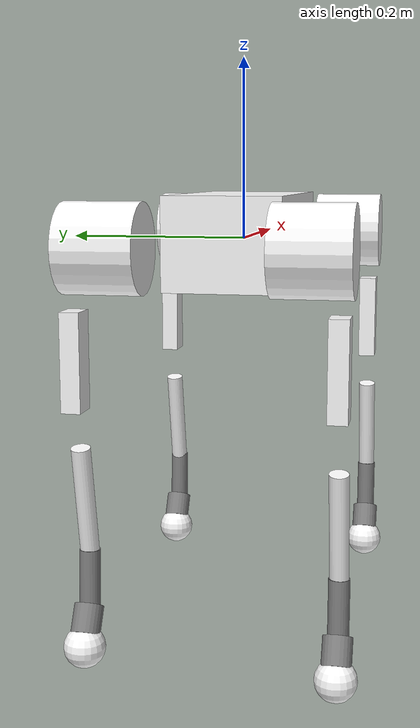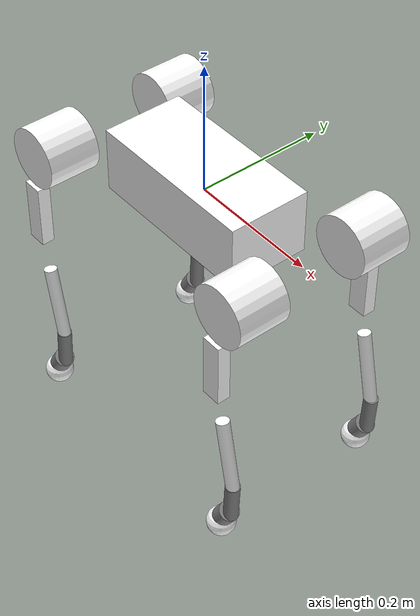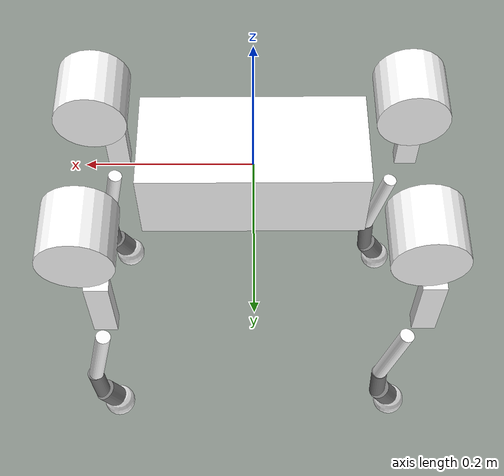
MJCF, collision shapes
<mujoco model="TOE_dog3">
  <compiler angle="radian" meshdir="/home/ubuntu/isaac/t_s/quadruped_rl_blind_walk/legged_gym/resources/robots/TOE_dog3/meshes/"/>

  <asset>
    <mesh name="base_2" file="base_2.STL"/>
    <mesh name="FL_hip" file="FL_hip.STL"/>
    <mesh name="FL_thigh" file="FL_thigh.STL"/>
    <mesh name="calf" file="calf.STL"/>
    <mesh name="TOE_foot" file="TOE_foot.STL"/>
    <mesh name="FR_hip" file="FR_hip.STL"/>
    <mesh name="FR_thigh" file="FR_thigh.STL"/>
    <mesh name="RL_hip" file="RL_hip.STL"/>
    <mesh name="RL_thigh" file="RL_thigh.STL"/>
    <mesh name="RR_hip" file="RR_hip.STL"/>
    <mesh name="RR_thigh" file="RR_thigh.STL"/>
  </asset>

  <worldbody>
    <geom type="mesh" contype="0" conaffinity="0" group="1" density="0" rgba="1 1 1 1" mesh="base_2"/>
    <geom size="0.135 0.063 0.05" type="box" rgba="1 1 1 1"/>
    <body name="FL_hip" pos="0.138 0.063 0">
      <inertial pos="0.0544564 -0.012223 -3.33186e-05" quat="0.0110337 0.707021 -0.0110337 0.707021" mass="5.716" diaginertia="0.067 0.0560312 0.0239688"/>
      <joint name="FL_hip_joint" pos="0 0 0" axis="1 0 0" range="-1 1" actuatorfrcrange="-20 20"/>
      <geom type="mesh" contype="0" conaffinity="0" group="1" density="0" rgba="1 1 1 1" mesh="FL_hip"/>
      <geom size="0.046 0.04" pos="0.064 0.04 0" quat="0.707107 0.707107 0 0" type="cylinder" rgba="1 1 1 1"/>
      <body name="FL_thigh" pos="0.064 0.0673 0">
        <inertial pos="-0.00209131 -0.0157512 -0.0357313" quat="0.708157 0.088053 -0.0563058 0.698276" mass="1.00589" diaginertia="0.00478391 0.00446675 0.000796341"/>
        <joint name="FL_thigh_joint" pos="0 0 0" axis="0 1 0" range="-1.5 2.5" actuatorfrcrange="-20 20"/>
        <geom type="mesh" contype="0" conaffinity="0" group="1" density="0" rgba="1 1 1 1" mesh="FL_thigh"/>
        <geom size="0.05 0.01 0.015" pos="-0.015 0 -0.11" quat="0.707107 0 0.707107 0" type="box" rgba="1 1 1 1"/>
        <body name="FL_calf" pos="0 0 -0.2">
          <inertial pos="0.00837262 -2.88098e-05 -0.123831" quat="0.642674 0.00949052 -0.0225232 0.76575" mass="0.283555" diaginertia="0.00176973 0.00175306 4.79811e-05"/>
          <joint name="FL_calf_joint" pos="0 0 0" axis="0 1 0" range="-2.5 -0.8" actuatorfrcrange="-20 20"/>
          <geom type="mesh" contype="0" conaffinity="0" group="1" density="0" rgba="1 1 1 1" mesh="calf"/>
          <geom size="0.01 0.06" pos="0.008 0 -0.06" quat="0.994493 0 -0.104807 0" type="cylinder" rgba="1 1 1 1"/>
          <geom size="0.011 0.0325" pos="0.02 0 -0.148" quat="0.999688 0 0.0249974 0" type="cylinder"/>
          <geom size="0.0155 0.015" pos="0.00801333 0 -0.18745" quat="0.965093 0 0.261909 0" type="cylinder"/>
          <geom pos="0 0 -0.213" quat="1 0 0 0" type="mesh" contype="0" conaffinity="0" group="1" density="0" rgba="1 1 1 1" mesh="TOE_foot"/>
          <geom size="0.022" pos="-0.002 0 -0.213" rgba="1 1 1 1"/>
        </body>
      </body>
    </body>
    <body name="FR_hip" pos="0.138 -0.063 0">
      <inertial pos="0.0544564 0.012223 3.33186e-05" quat="0.493614 0.493614 0.506305 0.506305" mass="0.72926" diaginertia="0.000973279 0.000664 0.000539721"/>
      <joint name="FR_hip_joint" pos="0 0 0" axis="1 0 0" range="-1 1" actuatorfrcrange="-20 20"/>
      <geom type="mesh" contype="0" conaffinity="0" group="1" density="0" rgba="1 1 1 1" mesh="FR_hip"/>
      <geom size="0.046 0.04" pos="0.064 -0.04 0" quat="0.707107 0.707107 0 0" type="cylinder" rgba="1 1 1 1"/>
      <body name="FR_thigh" pos="0.064 -0.0673 0">
        <inertial pos="-0.00179872 0.0157557 -0.0361369" quat="0.705452 -0.0323703 0.061048 0.705381" mass="1.02069" diaginertia="0.00492032 0.00459719 0.000814487"/>
        <joint name="FR_thigh_joint" pos="0 0 0" axis="0 1 0" range="-1.5 2.5" actuatorfrcrange="-20 20"/>
        <geom type="mesh" contype="0" conaffinity="0" group="1" density="0" rgba="1 1 1 1" mesh="FR_thigh"/>
        <geom size="0.05 0.01 0.015" pos="-0.015 0 -0.11" quat="0.707107 0 0.707107 0" type="box" rgba="1 1 1 1"/>
        <body name="FR_calf" pos="0 0 -0.2">
          <inertial pos="0.00837262 -2.88098e-05 -0.123831" quat="0.706919 -0.0052156 -0.00489906 0.707258" mass="0.283555" diaginertia="0.00177148 0.00175356 4.57348e-05"/>
          <joint name="FR_calf_joint" pos="0 0 0" axis="0 1 0" range="-2.5 -0.8" actuatorfrcrange="-20 20"/>
          <geom type="mesh" contype="0" conaffinity="0" group="1" density="0" rgba="1 1 1 1" mesh="calf"/>
          <geom size="0.01 0.06" pos="0.01 0 -0.06" quat="0.995004 0 -0.0998334 0" type="cylinder" rgba="1 1 1 1"/>
          <geom size="0.011 0.0325" pos="0.02 0 -0.148" quat="0.999688 0 0.0249974 0" type="cylinder"/>
          <geom size="0.0155 0.015" pos="0.00801333 0 -0.18745" quat="0.965093 0 0.261909 0" type="cylinder"/>
          <geom pos="0 0 -0.213" quat="1 0 0 0" type="mesh" contype="0" conaffinity="0" group="1" density="0" rgba="1 1 1 1" mesh="TOE_foot"/>
          <geom size="0.022" pos="-0.002 0 -0.213" rgba="1 1 1 1"/>
        </body>
      </body>
    </body>
    <body name="RL_hip" pos="-0.136 0.063 0">
      <inertial pos="-0.0544564 -0.012223 3.33186e-05" quat="0.492745 0.494482 0.505559 0.507051" mass="0.729266" diaginertia="0.000973282 0.000663997 0.000539721"/>
      <joint name="RL_hip_joint" pos="0 0 0" axis="1 0 0" range="-1 1" actuatorfrcrange="-20 20"/>
      <geom type="mesh" contype="0" conaffinity="0" group="1" density="0" rgba="1 1 1 1" mesh="RL_hip"/>
      <geom size="0.046 0.04" pos="-0.064 0.04 0" quat="0.707107 0.707107 0 0" type="cylinder" rgba="1 1 1 1"/>
      <body name="RL_thigh" pos="-0.064 0.0673 0">
        <inertial pos="-0.00209131 -0.0157512 -0.0357313" quat="0.711046 0.0625847 -0.0312494 0.699657" mass="1.00589" diaginertia="0.00478432 0.00446672 0.000795967"/>
        <joint name="RL_thigh_joint" pos="0 0 0" axis="0 1 0" range="-1.5 2.5" actuatorfrcrange="-20 20"/>
        <geom type="mesh" contype="0" conaffinity="0" group="1" density="0" rgba="1 1 1 1" mesh="RL_thigh"/>
        <geom size="0.05 0.01 0.015" pos="-0.015 0 -0.11" quat="0.707107 0 0.707107 0" type="box" rgba="1 1 1 1"/>
        <body name="RL_calf" pos="0 0 -0.2">
          <inertial pos="0.00837262 -2.88098e-05 -0.123831" quat="0.706919 -0.0052156 -0.00489906 0.707258" mass="0.283555" diaginertia="0.00177148 0.00175356 4.57348e-05"/>
          <joint name="RL_calf_joint" pos="0 0 0" axis="0 1 0" range="-2.5 -0.8" actuatorfrcrange="-20 20"/>
          <geom type="mesh" contype="0" conaffinity="0" group="1" density="0" rgba="1 1 1 1" mesh="calf"/>
          <geom size="0.01 0.06" pos="0.01 0 -0.06" quat="0.995004 0 -0.0998334 0" type="cylinder" rgba="1 1 1 1"/>
          <geom size="0.011 0.0325" pos="0.02 0 -0.148" quat="0.999688 0 0.0249974 0" type="cylinder"/>
          <geom size="0.0155 0.015" pos="0.00801333 0 -0.18745" quat="0.965093 0 0.261909 0" type="cylinder"/>
          <geom pos="0 0 -0.213" quat="1 0 0 0" type="mesh" contype="0" conaffinity="0" group="1" density="0" rgba="1 1 1 1" mesh="TOE_foot"/>
          <geom size="0.022" pos="-0.002 0 -0.213" rgba="1 1 1 1"/>
        </body>
      </body>
    </body>
    <body name="RR_hip" pos="-0.136 -0.063 0">
      <inertial pos="-0.0544564 0.012223 -3.33186e-05" quat="0.505559 0.507051 0.492745 0.494482" mass="0.729266" diaginertia="0.000973282 0.000663997 0.000539721"/>
      <joint name="RR_hip_joint" pos="0 0 0" axis="1 0 0" range="-1 1" actuatorfrcrange="-20 20"/>
      <geom type="mesh" contype="0" conaffinity="0" group="1" density="0" rgba="1 1 1 1" mesh="RR_hip"/>
      <geom size="0.046 0.04" pos="-0.064 -0.04 0" quat="0.707107 0.707107 0 0" type="cylinder" rgba="1 1 1 1"/>
      <body name="RR_thigh" pos="-0.064 -0.0673 0">
        <inertial pos="-0.00179872 0.0157557 -0.0361369" quat="0.705378 -0.0324105 0.0610056 0.705457" mass="1.02069" diaginertia="0.00492032 0.00459715 0.000814527"/>
        <joint name="RR_thigh_joint" pos="0 0 0" axis="0 1 0" range="-1.5 2.5" actuatorfrcrange="-20 20"/>
        <geom type="mesh" contype="0" conaffinity="0" group="1" density="0" rgba="1 1 1 1" mesh="RR_thigh"/>
        <geom size="0.05 0.01 0.015" pos="-0.015 0 -0.11" quat="0.707107 0 0.707107 0" type="box" rgba="1 1 1 1"/>
        <body name="RR_calf" pos="0 0 -0.213">
          <inertial pos="0.00837262 -2.88098e-05 -0.123831" quat="0.706919 -0.0052156 -0.00489906 0.707258" mass="0.283555" diaginertia="0.00177148 0.00175356 4.57348e-05"/>
          <joint name="RR_calf_joint" pos="0 0 0" axis="0 1 0" range="-2.5 -0.8" actuatorfrcrange="-20 20"/>
          <geom type="mesh" contype="0" conaffinity="0" group="1" density="0" rgba="1 1 1 1" mesh="calf"/>
          <geom size="0.01 0.06" pos="0.01 0 -0.06" quat="0.995004 0 -0.0998334 0" type="cylinder" rgba="1 1 1 1"/>
          <geom size="0.011 0.0325" pos="0.02 0 -0.148" quat="0.999688 0 0.0249974 0" type="cylinder"/>
          <geom size="0.0155 0.015" pos="0.00801333 0 -0.18745" quat="0.965093 0 0.261909 0" type="cylinder"/>
          <geom pos="0 0 -0.213" quat="1 0 0 0" type="mesh" contype="0" conaffinity="0" group="1" density="0" rgba="1 1 1 1" mesh="TOE_foot"/>
          <geom size="0.022" pos="-0.002 0 -0.213" rgba="1 1 1 1"/>
        </body>
      </body>
    </body>
  </worldbody>
</mujoco>
